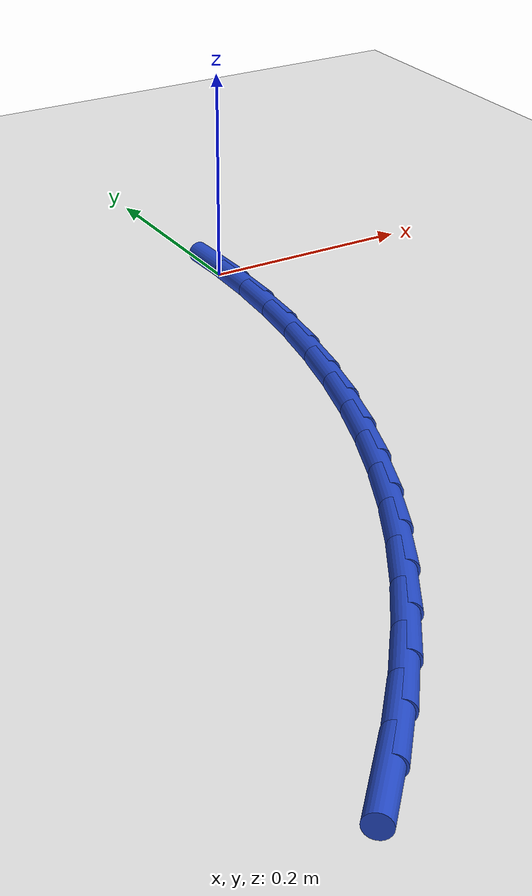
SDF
<sdf version="1.6">
 <world name="default">
  <model name="ground_plane">
   <static>1</static>
   <link name="link">
    <collision name="collision">
     <geometry><plane><normal>0 0 1</normal><size>100 100</size></plane></geometry>
     <surface><friction><ode><mu>100</mu><mu2>50</mu2></ode></friction></surface>
    </collision>
    <visual name="visual">
     <cast_shadows>0</cast_shadows>
     <geometry><plane><normal>0 0 1</normal><size>100 100</size></plane></geometry>
     <material>
      <script><uri>file://media/materials/scripts/gazebo.material</uri><name>Gazebo/WhiteGlow</name></script>
     </material>
    </visual>
   </link>
  </model>
  <model name="line">
   <link name="link_0">
    <pose>1.734723475976807e-17 2.7755575615628914e-17 0.01 0 1.57 -1.5456479274810933</pose>
    <collision name="collision">
     <geometry><cylinder><radius>0.01</radius><length>0.08</length></cylinder></geometry>
    </collision>
    <visual name="visual">
     <material>
      <script><name>Gazebo/Blue</name><uri>file://media/materials/scripts/gazebo.material</uri></script>
     </material>
     <geometry><cylinder><radius>0.01</radius><length>0.08</length></cylinder></geometry>
    </visual>
   </link>
   <link name="link_115">
    <pose>-0.26907896118870334 -0.6796110016548833 0.01 0 1.57 0.8428164132452669</pose>
    <collision name="collision">
     <geometry><cylinder><radius>0.01</radius><length>0.08</length></cylinder></geometry>
    </collision>
    <visual name="visual">
     <material>
      <script><name>Gazebo/Blue</name><uri>file://media/materials/scripts/gazebo.material</uri></script>
     </material>
     <geometry><cylinder><radius>0.01</radius><length>0.08</length></cylinder></geometry>
    </visual>
   </link>
   <link name="link_116">
    <pose>-0.23584436429724215 -0.6423226442890293 0.01 0 1.57 0.8898454444103073</pose>
    <collision name="collision">
     <geometry><cylinder><radius>0.01</radius><length>0.08</length></cylinder></geometry>
    </collision>
    <visual name="visual">
     <material>
      <script><name>Gazebo/Blue</name><uri>file://media/materials/scripts/gazebo.material</uri></script>
     </material>
     <geometry><cylinder><radius>0.01</radius><length>0.08</length></cylinder></geometry>
    </visual>
   </link>
   <link name="link_117">
    <pose>-0.20441079822892952 -0.6035270416122751 0.01 0 1.57 0.9380523126367113</pose>
    <collision name="collision">
     <geometry><cylinder><radius>0.01</radius><length>0.08</length></cylinder></geometry>
    </collision>
    <visual name="visual">
     <material>
      <script><name>Gazebo/Blue</name><uri>file://media/materials/scripts/gazebo.material</uri></script>
     </material>
     <geometry><cylinder><radius>0.01</radius><length>0.08</length></cylinder></geometry>
    </visual>
   </link>
   <link name="link_118">
    <pose>-0.17490255655675654 -0.5632881234607544 0.01 0 1.57 0.9875816164332165</pose>
    <collision name="collision">
     <geometry><cylinder><radius>0.01</radius><length>0.08</length></cylinder></geometry>
    </collision>
    <visual name="visual">
     <material>
      <script><name>Gazebo/Blue</name><uri>file://media/materials/scripts/gazebo.material</uri></script>
     </material>
     <geometry><cylinder><radius>0.01</radius><length>0.08</length></cylinder></geometry>
    </visual>
   </link>
   <link name="link_119">
    <pose>-0.1474439328537153 -0.5216698196706024 0.01 0 1.57 1.038560913235786</pose>
    <collision name="collision">
     <geometry><cylinder><radius>0.01</radius><length>0.08</length></cylinder></geometry>
    </collision>
    <visual name="visual">
     <material>
      <script><name>Gazebo/Blue</name><uri>file://media/materials/scripts/gazebo.material</uri></script>
     </material>
     <geometry><cylinder><radius>0.01</radius><length>0.08</length></cylinder></geometry>
    </visual>
   </link>
   <link name="link_120">
    <pose>-0.12215922069279665 -0.47873606007795233 0.01 0 1.57 1.0909674510222236</pose>
    <collision name="collision">
     <geometry><cylinder><radius>0.01</radius><length>0.08</length></cylinder></geometry>
    </collision>
    <visual name="visual">
     <material>
      <script><name>Gazebo/Blue</name><uri>file://media/materials/scripts/gazebo.material</uri></script>
     </material>
     <geometry><cylinder><radius>0.01</radius><length>0.08</length></cylinder></geometry>
    </visual>
   </link>
   <link name="link_121">
    <pose>-0.09916709374606489 -0.4345538533528967 0.01 0 1.57 1.1434588295601424</pose>
    <collision name="collision">
     <geometry><cylinder><radius>0.01</radius><length>0.08</length></cylinder></geometry>
    </collision>
    <visual name="visual">
     <material>
      <script><name>Gazebo/Blue</name><uri>file://media/materials/scripts/gazebo.material</uri></script>
     </material>
     <geometry><cylinder><radius>0.01</radius><length>0.08</length></cylinder></geometry>
    </visual>
   </link>
   <link name="link_122">
    <pose>-0.07852392329187402 -0.3892243402130418 0.01 0 1.57 1.1952302504315173</pose>
    <collision name="collision">
     <geometry><cylinder><radius>0.01</radius><length>0.08</length></cylinder></geometry>
    </collision>
    <visual name="visual">
     <material>
      <script><name>Gazebo/Blue</name><uri>file://media/materials/scripts/gazebo.material</uri></script>
     </material>
     <geometry><cylinder><radius>0.01</radius><length>0.08</length></cylinder></geometry>
    </visual>
   </link>
   <link name="link_123">
    <pose>-0.060247278548968546 -0.34286991888574975 0.01 0 1.57 1.2463641066885096</pose>
    <collision name="collision">
     <geometry><cylinder><radius>0.01</radius><length>0.08</length></cylinder></geometry>
    </collision>
    <visual name="visual">
     <material>
      <script><name>Gazebo/Blue</name><uri>file://media/materials/scripts/gazebo.material</uri></script>
     </material>
     <geometry><cylinder><radius>0.01</radius><length>0.08</length></cylinder></geometry>
    </visual>
   </link>
   <link name="link_124">
    <pose>-0.044354141835627206 -0.29561330912880185 0.01 0 1.57 1.2969665255507619</pose>
    <collision name="collision">
     <geometry><cylinder><radius>0.01</radius><length>0.08</length></cylinder></geometry>
    </collision>
    <visual name="visual">
     <material>
      <script><name>Gazebo/Blue</name><uri>file://media/materials/scripts/gazebo.material</uri></script>
     </material>
     <geometry><cylinder><radius>0.01</radius><length>0.08</length></cylinder></geometry>
    </visual>
   </link>
   <link name="link_125">
    <pose>-0.03086149547012793 -0.2475772306999774 0.01 0 1.57 1.3471513592175952</pose>
    <collision name="collision">
     <geometry><cylinder><radius>0.01</radius><length>0.08</length></cylinder></geometry>
    </collision>
    <visual name="visual">
     <material>
      <script><name>Gazebo/Blue</name><uri>file://media/materials/scripts/gazebo.material</uri></script>
     </material>
     <geometry><cylinder><radius>0.01</radius><length>0.08</length></cylinder></geometry>
    </visual>
   </link>
   <link name="link_126">
    <pose>-0.019786321770748794 -0.19888440335705548 0.01 0 1.57 1.3970378628017284</pose>
    <collision name="collision">
     <geometry><cylinder><radius>0.01</radius><length>0.08</length></cylinder></geometry>
    </collision>
    <visual name="visual">
     <material>
      <script><name>Gazebo/Blue</name><uri>file://media/materials/scripts/gazebo.material</uri></script>
     </material>
     <geometry><cylinder><radius>0.01</radius><length>0.08</length></cylinder></geometry>
    </visual>
   </link>
   <link name="link_127">
    <pose>-0.011145603055768321 -0.14965754685781738 0.01 0 1.57 1.446748588017999</pose>
    <collision name="collision">
     <geometry><cylinder><radius>0.01</radius><length>0.08</length></cylinder></geometry>
    </collision>
    <visual name="visual">
     <material>
      <script><name>Gazebo/Blue</name><uri>file://media/materials/scripts/gazebo.material</uri></script>
     </material>
     <geometry><cylinder><radius>0.01</radius><length>0.08</length></cylinder></geometry>
    </visual>
   </link>
   <link name="link_128">
    <pose>-0.004956321643464553 -0.10001938096004215 0.01 0 1.57 1.4964074378735988</pose>
    <collision name="collision">
     <geometry><cylinder><radius>0.01</radius><length>0.08</length></cylinder></geometry>
    </collision>
    <visual name="visual">
     <material>
      <script><name>Gazebo/Blue</name><uri>file://media/materials/scripts/gazebo.material</uri></script>
     </material>
     <geometry><cylinder><radius>0.01</radius><length>0.08</length></cylinder></geometry>
    </visual>
   </link>
   <link name="link_129">
    <pose>-0.0012354598521157004 -0.050092625421509704 0.01 0 1.57 1.5461378181277228</pose>
    <collision name="collision">
     <geometry><cylinder><radius>0.01</radius><length>0.08</length></cylinder></geometry>
    </collision>
    <visual name="visual">
     <material>
      <script><name>Gazebo/Blue</name><uri>file://media/materials/scripts/gazebo.material</uri></script>
     </material>
     <geometry><cylinder><radius>0.01</radius><length>0.08</length></cylinder></geometry>
    </visual>
   </link>
  </model>
 </world>
</sdf>
